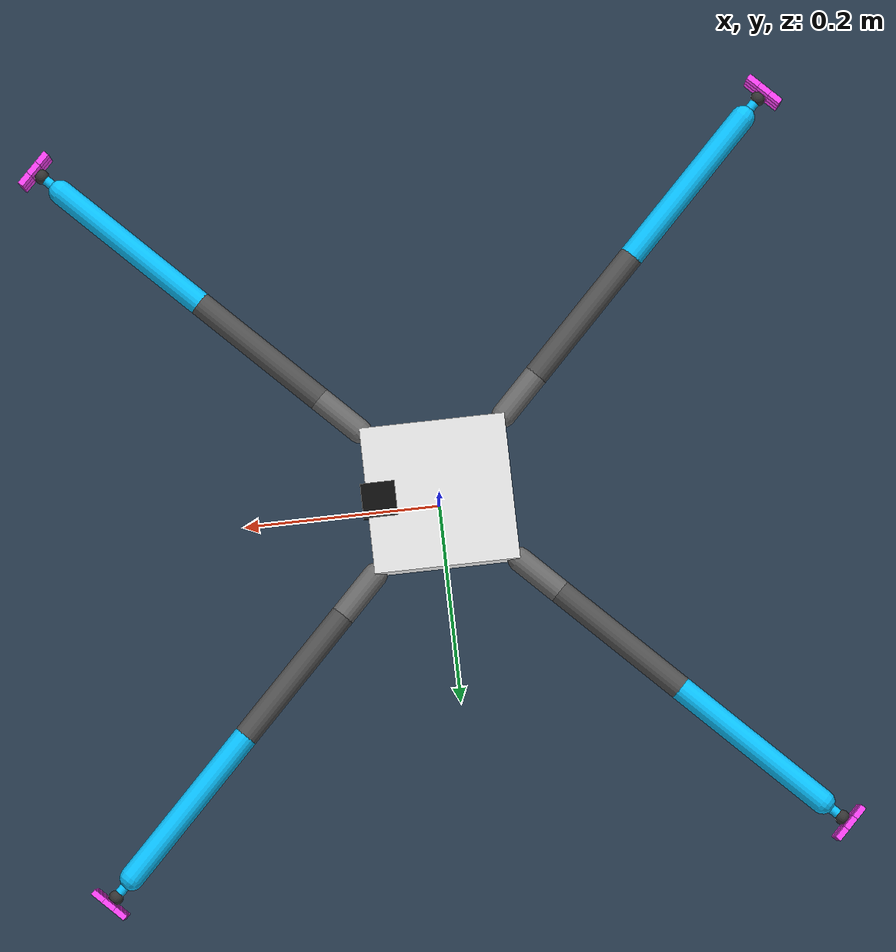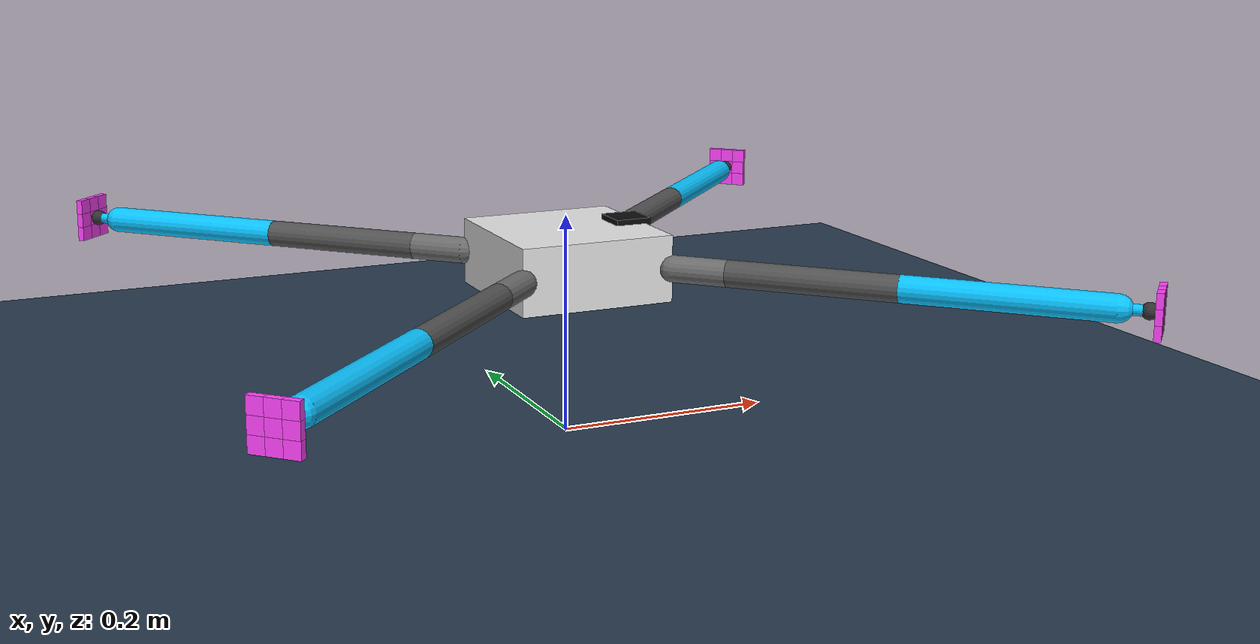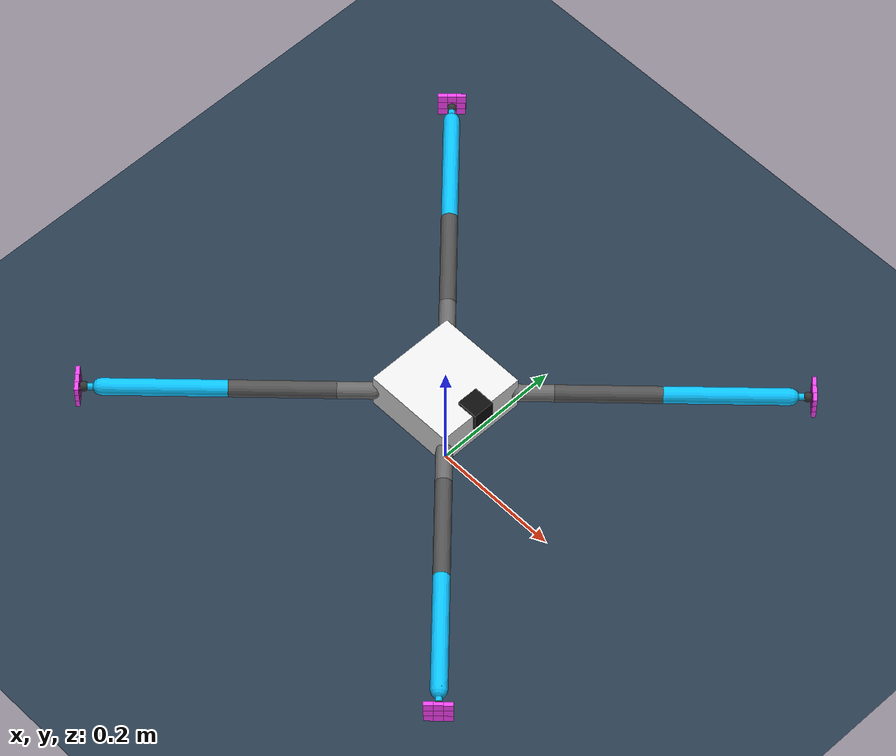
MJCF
<mujoco model="spider">
  <compiler angle="radian"/>

  <option impratio="10" integrator="implicitfast" cone="elliptic">
    <flag nativeccd="disable" multiccd="disable"/>
  </option>

  <size nkey="2"/>

  <default>
    <joint armature="0.005" damping="0.05"/>
    <general forcerange="-5 5" biastype="affine" gainprm="10" biasprm="0 -10 -1"/>
    <default class="link">
      <geom size="0.012 0 0" type="capsule"/>
    </default>
    <default class="foot">
      <geom size="0.02 0 0"/>
    </default>
    <default class="base">
      <geom type="box"/>
    </default>
    <default class="j0">
      <joint range="-1.0472 1.0472"/>
      <general ctrlrange="-1.0472 1.0472"/>
    </default>
    <default class="j1">
      <joint range="-1.74533 1.74533"/>
      <general ctrlrange="-1.74533 1.74533"/>
    </default>
    <default class="j2">
      <joint range="-2.79253 2.79253"/>
      <general ctrlrange="-2.79253 2.79253"/>
    </default>
  </default>

  <asset>
    <texture type="2d" colorspace="auto" name="grid" builtin="checker" rgb1="0.2 0.3 0.4" rgb2="0.1 0.15 0.2" width="512" height="512"/>
    <material name="grid" texture="grid" texrepeat="10 10"/>
  </asset>

  <worldbody>
    <geom name="floor" size="0 0 0.05" type="plane" friction="0.5" material="grid"/>
    <light pos="0 0 2" dir="0 0 -1" diffuse="0.8 0.8 0.8"/>
    <body name="base" pos="0 0 0.16">
      <joint name="root" type="free" armature="0" damping="0"/>
      <geom name="base" class="base" size="0.0707107 0.0707107 0.03" pos="0 -3.72529e-09 0" mass="1.8" rgba="0.9 0.9 0.9 1"/>
      <geom name="body_nose" size="0.0166667 0.0166667 0.0166667" pos="0.059044 -3.72529e-09 0.0183333" type="box" contype="0" conaffinity="0" mass="0" rgba="0.05 0.05 0.05 1"/>
      <body name="leg0_0" pos="0.0707107 0.0707107 0" quat="0.92388 0 0 0.382683">
        <joint name="leg0_j0" class="j0" pos="0 0 0" axis="0 0 1"/>
        <geom class="link" size="0.012 0.025" pos="0.025 0 0" quat="0.707107 0 -0.707107 0" mass="0.04" rgba="0.42 0.42 0.42 1"/>
        <body name="leg0_1" pos="0.05 0 0">
          <joint name="leg0_j1" class="j1" pos="0 0 0" axis="0 1 0"/>
          <geom class="link" size="0.012 0.075" pos="0.075 0 0" quat="0.707107 0 -0.707107 0" mass="0.08" rgba="0.32 0.32 0.32 1"/>
          <body name="leg0_2" pos="0.15 0 0">
            <joint name="leg0_j2" class="j2" pos="0 0 0" axis="0 1 0"/>
            <geom class="link" size="0.012 0.088" pos="0.088 0 0" quat="0.707107 0 -0.707107 0" mass="0.08" rgba="0.04 0.76 1 1"/>
            <geom size="0.0048 0.012" pos="0.188 0 0" quat="0.707107 0 -0.707107 0" type="capsule" contype="0" conaffinity="0" mass="0" rgba="0.04 0.76 1 1"/>
            <body name="foot0" pos="0.2 0 0">
              <body name="pad0">
                <joint name="ankle0_a" pos="0 0 0" axis="0 1 0" stiffness="0.05" limited="true" range="-0.785398 0.785398" armature="0.0001" damping="0.005"/>
                <joint name="ankle0_b" pos="0 0 0" axis="0 0 1" stiffness="0.05" limited="true" range="-0.785398 0.785398" armature="0.0001" damping="0.005"/>
                <geom size="0.0072" contype="0" conaffinity="0" mass="0" rgba="0.2 0.2 0.2 1"/>
                <body name="pad0_c0" pos="0.008 -0.0133333 -0.0133333">
                  <geom size="0.003 0.00666667 0.00666667" type="box" friction="0.5" margin="0.002" gap="0.002" mass="0.00555556" rgba="1 0.26 0.98 1"/>
                </body>
                <body name="pad0_c1" pos="0.008 -0.0133333 0">
                  <geom size="0.003 0.00666667 0.00666667" type="box" friction="0.5" margin="0.002" gap="0.002" mass="0.00555556" rgba="1 0.26 0.98 1"/>
                </body>
                <body name="pad0_c2" pos="0.008 -0.0133333 0.0133333">
                  <geom size="0.003 0.00666667 0.00666667" type="box" friction="0.5" margin="0.002" gap="0.002" mass="0.00555556" rgba="1 0.26 0.98 1"/>
                </body>
                <body name="pad0_c3" pos="0.008 0 -0.0133333">
                  <geom size="0.003 0.00666667 0.00666667" type="box" friction="0.5" margin="0.002" gap="0.002" mass="0.00555556" rgba="1 0.26 0.98 1"/>
                </body>
                <body name="pad0_c4" pos="0.008 0 0">
                  <geom size="0.003 0.00666667 0.00666667" type="box" friction="0.5" margin="0.002" gap="0.002" mass="0.00555556" rgba="1 0.26 0.98 1"/>
                </body>
                <body name="pad0_c5" pos="0.008 0 0.0133333">
                  <geom size="0.003 0.00666667 0.00666667" type="box" friction="0.5" margin="0.002" gap="0.002" mass="0.00555556" rgba="1 0.26 0.98 1"/>
                </body>
                <body name="pad0_c6" pos="0.008 0.0133333 -0.0133333">
                  <geom size="0.003 0.00666667 0.00666667" type="box" friction="0.5" margin="0.002" gap="0.002" mass="0.00555556" rgba="1 0.26 0.98 1"/>
                </body>
                <body name="pad0_c7" pos="0.008 0.0133333 0">
                  <geom size="0.003 0.00666667 0.00666667" type="box" friction="0.5" margin="0.002" gap="0.002" mass="0.00555556" rgba="1 0.26 0.98 1"/>
                </body>
                <body name="pad0_c8" pos="0.008 0.0133333 0.0133333">
                  <geom size="0.003 0.00666667 0.00666667" type="box" friction="0.5" margin="0.002" gap="0.002" mass="0.00555556" rgba="1 0.26 0.98 1"/>
                </body>
              </body>
            </body>
          </body>
        </body>
      </body>
      <body name="leg1_0" pos="-0.0707107 0.0707107 0" quat="0.382683 0 0 0.92388">
        <joint name="leg1_j0" class="j0" pos="0 0 0" axis="0 0 1"/>
        <geom class="link" size="0.012 0.025" pos="0.025 0 0" quat="0.707107 0 -0.707107 0" mass="0.04" rgba="0.42 0.42 0.42 1"/>
        <body name="leg1_1" pos="0.05 0 0">
          <joint name="leg1_j1" class="j1" pos="0 0 0" axis="0 1 0"/>
          <geom class="link" size="0.012 0.075" pos="0.075 0 0" quat="0.707107 0 -0.707107 0" mass="0.08" rgba="0.32 0.32 0.32 1"/>
          <body name="leg1_2" pos="0.15 0 0">
            <joint name="leg1_j2" class="j2" pos="0 0 0" axis="0 1 0"/>
            <geom class="link" size="0.012 0.088" pos="0.088 0 0" quat="0.707107 0 -0.707107 0" mass="0.08" rgba="0.04 0.76 1 1"/>
            <geom size="0.0048 0.012" pos="0.188 0 0" quat="0.707107 0 -0.707107 0" type="capsule" contype="0" conaffinity="0" mass="0" rgba="0.04 0.76 1 1"/>
            <body name="foot1" pos="0.2 0 0">
              <body name="pad1">
                <joint name="ankle1_a" pos="0 0 0" axis="0 1 0" stiffness="0.05" limited="true" range="-0.785398 0.785398" armature="0.0001" damping="0.005"/>
                <joint name="ankle1_b" pos="0 0 0" axis="0 0 1" stiffness="0.05" limited="true" range="-0.785398 0.785398" armature="0.0001" damping="0.005"/>
                <geom size="0.0072" contype="0" conaffinity="0" mass="0" rgba="0.2 0.2 0.2 1"/>
                <body name="pad1_c0" pos="0.008 -0.0133333 -0.0133333">
                  <geom size="0.003 0.00666667 0.00666667" type="box" friction="0.5" margin="0.002" gap="0.002" mass="0.00555556" rgba="1 0.26 0.98 1"/>
                </body>
                <body name="pad1_c1" pos="0.008 -0.0133333 0">
                  <geom size="0.003 0.00666667 0.00666667" type="box" friction="0.5" margin="0.002" gap="0.002" mass="0.00555556" rgba="1 0.26 0.98 1"/>
                </body>
                <body name="pad1_c2" pos="0.008 -0.0133333 0.0133333">
                  <geom size="0.003 0.00666667 0.00666667" type="box" friction="0.5" margin="0.002" gap="0.002" mass="0.00555556" rgba="1 0.26 0.98 1"/>
                </body>
                <body name="pad1_c3" pos="0.008 0 -0.0133333">
                  <geom size="0.003 0.00666667 0.00666667" type="box" friction="0.5" margin="0.002" gap="0.002" mass="0.00555556" rgba="1 0.26 0.98 1"/>
                </body>
                <body name="pad1_c4" pos="0.008 0 0">
                  <geom size="0.003 0.00666667 0.00666667" type="box" friction="0.5" margin="0.002" gap="0.002" mass="0.00555556" rgba="1 0.26 0.98 1"/>
                </body>
                <body name="pad1_c5" pos="0.008 0 0.0133333">
                  <geom size="0.003 0.00666667 0.00666667" type="box" friction="0.5" margin="0.002" gap="0.002" mass="0.00555556" rgba="1 0.26 0.98 1"/>
                </body>
                <body name="pad1_c6" pos="0.008 0.0133333 -0.0133333">
                  <geom size="0.003 0.00666667 0.00666667" type="box" friction="0.5" margin="0.002" gap="0.002" mass="0.00555556" rgba="1 0.26 0.98 1"/>
                </body>
                <body name="pad1_c7" pos="0.008 0.0133333 0">
                  <geom size="0.003 0.00666667 0.00666667" type="box" friction="0.5" margin="0.002" gap="0.002" mass="0.00555556" rgba="1 0.26 0.98 1"/>
                </body>
                <body name="pad1_c8" pos="0.008 0.0133333 0.0133333">
                  <geom size="0.003 0.00666667 0.00666667" type="box" friction="0.5" margin="0.002" gap="0.002" mass="0.00555556" rgba="1 0.26 0.98 1"/>
                </body>
              </body>
            </body>
          </body>
        </body>
      </body>
      <body name="leg2_0" pos="-0.0707107 -0.0707107 0" quat="0.382683 0 0 -0.92388">
        <joint name="leg2_j0" class="j0" pos="0 0 0" axis="0 0 1"/>
        <geom class="link" size="0.012 0.025" pos="0.025 0 0" quat="0.707107 0 -0.707107 0" mass="0.04" rgba="0.42 0.42 0.42 1"/>
        <body name="leg2_1" pos="0.05 0 0">
          <joint name="leg2_j1" class="j1" pos="0 0 0" axis="0 1 0"/>
          <geom class="link" size="0.012 0.075" pos="0.075 0 0" quat="0.707107 0 -0.707107 0" mass="0.08" rgba="0.32 0.32 0.32 1"/>
          <body name="leg2_2" pos="0.15 0 0">
            <joint name="leg2_j2" class="j2" pos="0 0 0" axis="0 1 0"/>
            <geom class="link" size="0.012 0.088" pos="0.088 0 0" quat="0.707107 0 -0.707107 0" mass="0.08" rgba="0.04 0.76 1 1"/>
            <geom size="0.0048 0.012" pos="0.188 0 0" quat="0.707107 0 -0.707107 0" type="capsule" contype="0" conaffinity="0" mass="0" rgba="0.04 0.76 1 1"/>
            <body name="foot2" pos="0.2 0 0">
              <body name="pad2">
                <joint name="ankle2_a" pos="0 0 0" axis="0 1 0" stiffness="0.05" limited="true" range="-0.785398 0.785398" armature="0.0001" damping="0.005"/>
                <joint name="ankle2_b" pos="0 0 0" axis="0 0 1" stiffness="0.05" limited="true" range="-0.785398 0.785398" armature="0.0001" damping="0.005"/>
                <geom size="0.0072" contype="0" conaffinity="0" mass="0" rgba="0.2 0.2 0.2 1"/>
                <body name="pad2_c0" pos="0.008 -0.0133333 -0.0133333">
                  <geom size="0.003 0.00666667 0.00666667" type="box" friction="0.5" margin="0.002" gap="0.002" mass="0.00555556" rgba="1 0.26 0.98 1"/>
                </body>
                <body name="pad2_c1" pos="0.008 -0.0133333 0">
                  <geom size="0.003 0.00666667 0.00666667" type="box" friction="0.5" margin="0.002" gap="0.002" mass="0.00555556" rgba="1 0.26 0.98 1"/>
                </body>
                <body name="pad2_c2" pos="0.008 -0.0133333 0.0133333">
                  <geom size="0.003 0.00666667 0.00666667" type="box" friction="0.5" margin="0.002" gap="0.002" mass="0.00555556" rgba="1 0.26 0.98 1"/>
                </body>
                <body name="pad2_c3" pos="0.008 0 -0.0133333">
                  <geom size="0.003 0.00666667 0.00666667" type="box" friction="0.5" margin="0.002" gap="0.002" mass="0.00555556" rgba="1 0.26 0.98 1"/>
                </body>
                <body name="pad2_c4" pos="0.008 0 0">
                  <geom size="0.003 0.00666667 0.00666667" type="box" friction="0.5" margin="0.002" gap="0.002" mass="0.00555556" rgba="1 0.26 0.98 1"/>
                </body>
                <body name="pad2_c5" pos="0.008 0 0.0133333">
                  <geom size="0.003 0.00666667 0.00666667" type="box" friction="0.5" margin="0.002" gap="0.002" mass="0.00555556" rgba="1 0.26 0.98 1"/>
                </body>
                <body name="pad2_c6" pos="0.008 0.0133333 -0.0133333">
                  <geom size="0.003 0.00666667 0.00666667" type="box" friction="0.5" margin="0.002" gap="0.002" mass="0.00555556" rgba="1 0.26 0.98 1"/>
                </body>
                <body name="pad2_c7" pos="0.008 0.0133333 0">
                  <geom size="0.003 0.00666667 0.00666667" type="box" friction="0.5" margin="0.002" gap="0.002" mass="0.00555556" rgba="1 0.26 0.98 1"/>
                </body>
                <body name="pad2_c8" pos="0.008 0.0133333 0.0133333">
                  <geom size="0.003 0.00666667 0.00666667" type="box" friction="0.5" margin="0.002" gap="0.002" mass="0.00555556" rgba="1 0.26 0.98 1"/>
                </body>
              </body>
            </body>
          </body>
        </body>
      </body>
      <body name="leg3_0" pos="0.0707107 -0.0707107 0" quat="0.923879 0 0 -0.382684">
        <joint name="leg3_j0" class="j0" pos="0 0 0" axis="0 0 1"/>
        <geom class="link" size="0.012 0.025" pos="0.025 0 0" quat="0.707107 0 -0.707107 0" mass="0.04" rgba="0.42 0.42 0.42 1"/>
        <body name="leg3_1" pos="0.05 0 0">
          <joint name="leg3_j1" class="j1" pos="0 0 0" axis="0 1 0"/>
          <geom class="link" size="0.012 0.075" pos="0.075 0 0" quat="0.707107 0 -0.707107 0" mass="0.08" rgba="0.32 0.32 0.32 1"/>
          <body name="leg3_2" pos="0.15 0 0">
            <joint name="leg3_j2" class="j2" pos="0 0 0" axis="0 1 0"/>
            <geom class="link" size="0.012 0.088" pos="0.088 0 0" quat="0.707107 0 -0.707107 0" mass="0.08" rgba="0.04 0.76 1 1"/>
            <geom size="0.0048 0.012" pos="0.188 0 0" quat="0.707107 0 -0.707107 0" type="capsule" contype="0" conaffinity="0" mass="0" rgba="0.04 0.76 1 1"/>
            <body name="foot3" pos="0.2 0 0">
              <body name="pad3">
                <joint name="ankle3_a" pos="0 0 0" axis="0 1 0" stiffness="0.05" limited="true" range="-0.785398 0.785398" armature="0.0001" damping="0.005"/>
                <joint name="ankle3_b" pos="0 0 0" axis="0 0 1" stiffness="0.05" limited="true" range="-0.785398 0.785398" armature="0.0001" damping="0.005"/>
                <geom size="0.0072" contype="0" conaffinity="0" mass="0" rgba="0.2 0.2 0.2 1"/>
                <body name="pad3_c0" pos="0.008 -0.0133333 -0.0133333">
                  <geom size="0.003 0.00666667 0.00666667" type="box" friction="0.5" margin="0.002" gap="0.002" mass="0.00555556" rgba="1 0.26 0.98 1"/>
                </body>
                <body name="pad3_c1" pos="0.008 -0.0133333 0">
                  <geom size="0.003 0.00666667 0.00666667" type="box" friction="0.5" margin="0.002" gap="0.002" mass="0.00555556" rgba="1 0.26 0.98 1"/>
                </body>
                <body name="pad3_c2" pos="0.008 -0.0133333 0.0133333">
                  <geom size="0.003 0.00666667 0.00666667" type="box" friction="0.5" margin="0.002" gap="0.002" mass="0.00555556" rgba="1 0.26 0.98 1"/>
                </body>
                <body name="pad3_c3" pos="0.008 0 -0.0133333">
                  <geom size="0.003 0.00666667 0.00666667" type="box" friction="0.5" margin="0.002" gap="0.002" mass="0.00555556" rgba="1 0.26 0.98 1"/>
                </body>
                <body name="pad3_c4" pos="0.008 0 0">
                  <geom size="0.003 0.00666667 0.00666667" type="box" friction="0.5" margin="0.002" gap="0.002" mass="0.00555556" rgba="1 0.26 0.98 1"/>
                </body>
                <body name="pad3_c5" pos="0.008 0 0.0133333">
                  <geom size="0.003 0.00666667 0.00666667" type="box" friction="0.5" margin="0.002" gap="0.002" mass="0.00555556" rgba="1 0.26 0.98 1"/>
                </body>
                <body name="pad3_c6" pos="0.008 0.0133333 -0.0133333">
                  <geom size="0.003 0.00666667 0.00666667" type="box" friction="0.5" margin="0.002" gap="0.002" mass="0.00555556" rgba="1 0.26 0.98 1"/>
                </body>
                <body name="pad3_c7" pos="0.008 0.0133333 0">
                  <geom size="0.003 0.00666667 0.00666667" type="box" friction="0.5" margin="0.002" gap="0.002" mass="0.00555556" rgba="1 0.26 0.98 1"/>
                </body>
                <body name="pad3_c8" pos="0.008 0.0133333 0.0133333">
                  <geom size="0.003 0.00666667 0.00666667" type="box" friction="0.5" margin="0.002" gap="0.002" mass="0.00555556" rgba="1 0.26 0.98 1"/>
                </body>
              </body>
            </body>
          </body>
        </body>
      </body>
    </body>
  </worldbody>

  <contact>
    <exclude body1="leg0_2" body2="pad0_c0"/>
    <exclude body1="leg0_2" body2="pad0_c1"/>
    <exclude body1="leg0_2" body2="pad0_c2"/>
    <exclude body1="leg0_2" body2="pad0_c3"/>
    <exclude body1="leg0_2" body2="pad0_c4"/>
    <exclude body1="leg0_2" body2="pad0_c5"/>
    <exclude body1="leg0_2" body2="pad0_c6"/>
    <exclude body1="leg0_2" body2="pad0_c7"/>
    <exclude body1="leg0_2" body2="pad0_c8"/>
    <exclude body1="leg1_2" body2="pad1_c0"/>
    <exclude body1="leg1_2" body2="pad1_c1"/>
    <exclude body1="leg1_2" body2="pad1_c2"/>
    <exclude body1="leg1_2" body2="pad1_c3"/>
    <exclude body1="leg1_2" body2="pad1_c4"/>
    <exclude body1="leg1_2" body2="pad1_c5"/>
    <exclude body1="leg1_2" body2="pad1_c6"/>
    <exclude body1="leg1_2" body2="pad1_c7"/>
    <exclude body1="leg1_2" body2="pad1_c8"/>
    <exclude body1="leg2_2" body2="pad2_c0"/>
    <exclude body1="leg2_2" body2="pad2_c1"/>
    <exclude body1="leg2_2" body2="pad2_c2"/>
    <exclude body1="leg2_2" body2="pad2_c3"/>
    <exclude body1="leg2_2" body2="pad2_c4"/>
    <exclude body1="leg2_2" body2="pad2_c5"/>
    <exclude body1="leg2_2" body2="pad2_c6"/>
    <exclude body1="leg2_2" body2="pad2_c7"/>
    <exclude body1="leg2_2" body2="pad2_c8"/>
    <exclude body1="leg3_2" body2="pad3_c0"/>
    <exclude body1="leg3_2" body2="pad3_c1"/>
    <exclude body1="leg3_2" body2="pad3_c2"/>
    <exclude body1="leg3_2" body2="pad3_c3"/>
    <exclude body1="leg3_2" body2="pad3_c4"/>
    <exclude body1="leg3_2" body2="pad3_c5"/>
    <exclude body1="leg3_2" body2="pad3_c6"/>
    <exclude body1="leg3_2" body2="pad3_c7"/>
    <exclude body1="leg3_2" body2="pad3_c8"/>
  </contact>

  <actuator>
    <general name="leg0_j0" class="j0" joint="leg0_j0"/>
    <general name="leg0_j1" class="j1" joint="leg0_j1"/>
    <general name="leg0_j2" class="j2" joint="leg0_j2"/>
    <general name="leg1_j0" class="j0" joint="leg1_j0"/>
    <general name="leg1_j1" class="j1" joint="leg1_j1"/>
    <general name="leg1_j2" class="j2" joint="leg1_j2"/>
    <general name="leg2_j0" class="j0" joint="leg2_j0"/>
    <general name="leg2_j1" class="j1" joint="leg2_j1"/>
    <general name="leg2_j2" class="j2" joint="leg2_j2"/>
    <general name="leg3_j0" class="j0" joint="leg3_j0"/>
    <general name="leg3_j1" class="j1" joint="leg3_j1"/>
    <general name="leg3_j2" class="j2" joint="leg3_j2"/>
    <general name="adhere0_0" body="pad0_c0" ctrllimited="true" ctrlrange="0 1" forcelimited="false" biastype="none" gainprm="3.33333"/>
    <general name="adhere0_1" body="pad0_c1" ctrllimited="true" ctrlrange="0 1" forcelimited="false" biastype="none" gainprm="3.33333"/>
    <general name="adhere0_2" body="pad0_c2" ctrllimited="true" ctrlrange="0 1" forcelimited="false" biastype="none" gainprm="3.33333"/>
    <general name="adhere0_3" body="pad0_c3" ctrllimited="true" ctrlrange="0 1" forcelimited="false" biastype="none" gainprm="3.33333"/>
    <general name="adhere0_4" body="pad0_c4" ctrllimited="true" ctrlrange="0 1" forcelimited="false" biastype="none" gainprm="3.33333"/>
    <general name="adhere0_5" body="pad0_c5" ctrllimited="true" ctrlrange="0 1" forcelimited="false" biastype="none" gainprm="3.33333"/>
    <general name="adhere0_6" body="pad0_c6" ctrllimited="true" ctrlrange="0 1" forcelimited="false" biastype="none" gainprm="3.33333"/>
    <general name="adhere0_7" body="pad0_c7" ctrllimited="true" ctrlrange="0 1" forcelimited="false" biastype="none" gainprm="3.33333"/>
    <general name="adhere0_8" body="pad0_c8" ctrllimited="true" ctrlrange="0 1" forcelimited="false" biastype="none" gainprm="3.33333"/>
    <general name="adhere1_0" body="pad1_c0" ctrllimited="true" ctrlrange="0 1" forcelimited="false" biastype="none" gainprm="3.33333"/>
    <general name="adhere1_1" body="pad1_c1" ctrllimited="true" ctrlrange="0 1" forcelimited="false" biastype="none" gainprm="3.33333"/>
    <general name="adhere1_2" body="pad1_c2" ctrllimited="true" ctrlrange="0 1" forcelimited="false" biastype="none" gainprm="3.33333"/>
    <general name="adhere1_3" body="pad1_c3" ctrllimited="true" ctrlrange="0 1" forcelimited="false" biastype="none" gainprm="3.33333"/>
    <general name="adhere1_4" body="pad1_c4" ctrllimited="true" ctrlrange="0 1" forcelimited="false" biastype="none" gainprm="3.33333"/>
    <general name="adhere1_5" body="pad1_c5" ctrllimited="true" ctrlrange="0 1" forcelimited="false" biastype="none" gainprm="3.33333"/>
    <general name="adhere1_6" body="pad1_c6" ctrllimited="true" ctrlrange="0 1" forcelimited="false" biastype="none" gainprm="3.33333"/>
    <general name="adhere1_7" body="pad1_c7" ctrllimited="true" ctrlrange="0 1" forcelimited="false" biastype="none" gainprm="3.33333"/>
    <general name="adhere1_8" body="pad1_c8" ctrllimited="true" ctrlrange="0 1" forcelimited="false" biastype="none" gainprm="3.33333"/>
    <general name="adhere2_0" body="pad2_c0" ctrllimited="true" ctrlrange="0 1" forcelimited="false" biastype="none" gainprm="3.33333"/>
    <general name="adhere2_1" body="pad2_c1" ctrllimited="true" ctrlrange="0 1" forcelimited="false" biastype="none" gainprm="3.33333"/>
    <general name="adhere2_2" body="pad2_c2" ctrllimited="true" ctrlrange="0 1" forcelimited="false" biastype="none" gainprm="3.33333"/>
    <general name="adhere2_3" body="pad2_c3" ctrllimited="true" ctrlrange="0 1" forcelimited="false" biastype="none" gainprm="3.33333"/>
    <general name="adhere2_4" body="pad2_c4" ctrllimited="true" ctrlrange="0 1" forcelimited="false" biastype="none" gainprm="3.33333"/>
    <general name="adhere2_5" body="pad2_c5" ctrllimited="true" ctrlrange="0 1" forcelimited="false" biastype="none" gainprm="3.33333"/>
    <general name="adhere2_6" body="pad2_c6" ctrllimited="true" ctrlrange="0 1" forcelimited="false" biastype="none" gainprm="3.33333"/>
    <general name="adhere2_7" body="pad2_c7" ctrllimited="true" ctrlrange="0 1" forcelimited="false" biastype="none" gainprm="3.33333"/>
    <general name="adhere2_8" body="pad2_c8" ctrllimited="true" ctrlrange="0 1" forcelimited="false" biastype="none" gainprm="3.33333"/>
    <general name="adhere3_0" body="pad3_c0" ctrllimited="true" ctrlrange="0 1" forcelimited="false" biastype="none" gainprm="3.33333"/>
    <general name="adhere3_1" body="pad3_c1" ctrllimited="true" ctrlrange="0 1" forcelimited="false" biastype="none" gainprm="3.33333"/>
    <general name="adhere3_2" body="pad3_c2" ctrllimited="true" ctrlrange="0 1" forcelimited="false" biastype="none" gainprm="3.33333"/>
    <general name="adhere3_3" body="pad3_c3" ctrllimited="true" ctrlrange="0 1" forcelimited="false" biastype="none" gainprm="3.33333"/>
    <general name="adhere3_4" body="pad3_c4" ctrllimited="true" ctrlrange="0 1" forcelimited="false" biastype="none" gainprm="3.33333"/>
    <general name="adhere3_5" body="pad3_c5" ctrllimited="true" ctrlrange="0 1" forcelimited="false" biastype="none" gainprm="3.33333"/>
    <general name="adhere3_6" body="pad3_c6" ctrllimited="true" ctrlrange="0 1" forcelimited="false" biastype="none" gainprm="3.33333"/>
    <general name="adhere3_7" body="pad3_c7" ctrllimited="true" ctrlrange="0 1" forcelimited="false" biastype="none" gainprm="3.33333"/>
    <general name="adhere3_8" body="pad3_c8" ctrllimited="true" ctrlrange="0 1" forcelimited="false" biastype="none" gainprm="3.33333"/>
  </actuator>

  <keyframe>
    <key name="rest" qpos="0 0 0.032 1 0 0 0 -4.13921e-08 -1.41467 2.42287 0.562589 0 -2.27657e-07 -1.41467 2.42287 0.562589 0 1.44872e-07 -1.41467 2.42287 0.562589 0 4.76009e-07 -1.41467 2.42287 0.562589 0" ctrl="-4.13921e-08 -1.41467 2.42287 -2.27657e-07 -1.41467 2.42287 1.44872e-07 -1.41467 2.42287 4.76009e-07 -1.41467 2.42287 0 0 0 0 0 0 0 0 0 0 0 0 0 0 0 0 0 0 0 0 0 0 0 0 0 0 0 0 0 0 0 0 0 0 0 0"/>
    <key name="stand" qpos="0 0 0.16 1 0 0 0 -4.13921e-08 -0.344702 1.97141 -0.0559112 0 -2.27657e-07 -0.344702 1.97141 -0.0559112 0 1.44872e-07 -0.344702 1.97141 -0.0559113 0 4.76009e-07 -0.344702 1.97141 -0.055911 0" ctrl="-4.13921e-08 -0.344702 1.97141 -2.27657e-07 -0.344702 1.97141 1.44872e-07 -0.344702 1.97141 4.76009e-07 -0.344702 1.97141 0 0 0 0 0 0 0 0 0 0 0 0 0 0 0 0 0 0 0 0 0 0 0 0 0 0 0 0 0 0 0 0 0 0 0 0"/>
  </keyframe>
</mujoco>
